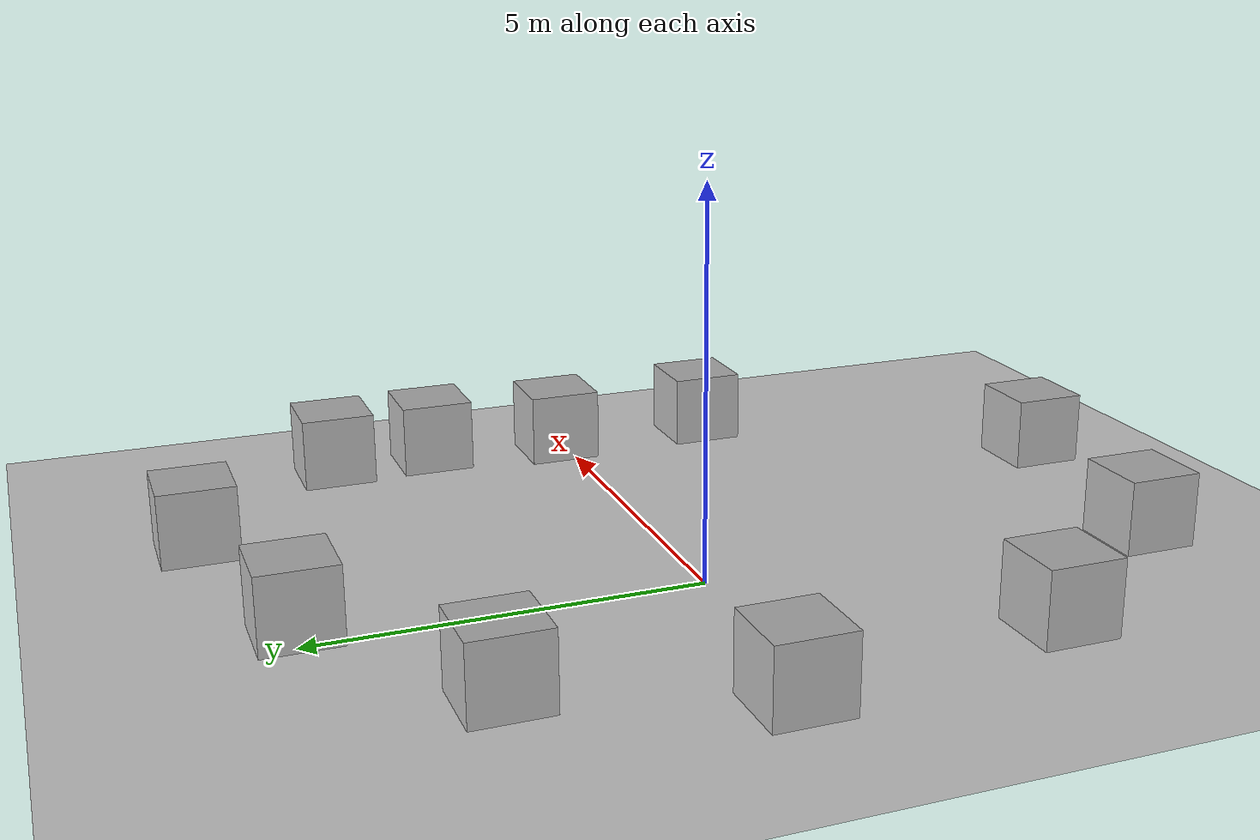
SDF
<sdf version='1.10'>
  <world name='empty'>
    <physics name='1ms' type='ignored'>
      <max_step_size>0.001</max_step_size>
      <real_time_factor>1</real_time_factor>
      <real_time_update_rate>1000</real_time_update_rate>
    </physics>
    <plugin name='gz::sim::systems::Physics' filename='gz-sim-physics-system'/>
    <plugin name='gz::sim::systems::UserCommands' filename='gz-sim-user-commands-system'/>
    <plugin name='gz::sim::systems::SceneBroadcaster' filename='gz-sim-scene-broadcaster-system'/>
    <plugin name='gz::sim::systems::Contact' filename='gz-sim-contact-system'/>
    <gravity>0 0 -9.8000000000000007</gravity>
    <magnetic_field>5.5644999999999998e-06 2.2875799999999999e-05 -4.2388400000000002e-05</magnetic_field>
    <atmosphere type='adiabatic'/>
    <scene>
      <ambient>0.400000006 0.400000006 0.400000006 1</ambient>
      <background>0.699999988 0.699999988 0.699999988 1</background>
      <shadows>true</shadows>
    </scene>
    <model name='ground_plane'>
      <static>true</static>
      <link name='link'>
        <collision name='collision'>
          <geometry>
            <plane>
              <normal>0 0 1</normal>
              <size>100 100</size>
            </plane>
          </geometry>
          <surface>
            <friction>
              <ode/>
            </friction>
            <bounce/>
            <contact/>
          </surface>
        </collision>
        <visual name='visual'>
          <geometry>
            <plane>
              <normal>0 0 1</normal>
              <size>100 100</size>
            </plane>
          </geometry>
          <material>
            <ambient>0.800000012 0.800000012 0.800000012 1</ambient>
            <diffuse>0.800000012 0.800000012 0.800000012 1</diffuse>
            <specular>0.800000012 0.800000012 0.800000012 1</specular>
          </material>
        </visual>
        <pose>0 0 0 0 0 0</pose>
        <inertial>
          <pose>0 0 0 0 0 0</pose>
          <mass>1</mass>
          <inertia>
            <ixx>1</ixx>
            <ixy>0</ixy>
            <ixz>0</ixz>
            <iyy>1</iyy>
            <iyz>0</iyz>
            <izz>1</izz>
          </inertia>
        </inertial>
        <enable_wind>false</enable_wind>
      </link>
      <pose>0 0 0 0 0 0</pose>
      <self_collide>false</self_collide>
    </model>
    <model name='box'>
      <pose>5.5580541609783385 3.4903723102053723 0.5 0 0 0</pose>
      <link name='box_link'>
        <inertial>
          <inertia>
            <ixx>0.16666</ixx>
            <ixy>0</ixy>
            <ixz>0</ixz>
            <iyy>0.16666</iyy>
            <iyz>0</iyz>
            <izz>0.16666</izz>
          </inertia>
          <mass>1</mass>
          <pose>0 0 0 0 0 0</pose>
        </inertial>
        <collision name='box_collision'>
          <geometry>
            <box>
              <size>1 1 1</size>
            </box>
          </geometry>
          <surface>
            <friction>
              <ode/>
            </friction>
            <bounce/>
            <contact/>
          </surface>
        </collision>
        <visual name='box_visual'>
          <geometry>
            <box>
              <size>1 1 1</size>
            </box>
          </geometry>
          <material>
            <ambient>0.300000012 0.300000012 0.300000012 1</ambient>
            <diffuse>0.699999988 0.699999988 0.699999988 1</diffuse>
            <specular>1 1 1 1</specular>
          </material>
        </visual>
        <pose>0 0 0 0 0 0</pose>
        <enable_wind>false</enable_wind>
      </link>
      <static>false</static>
      <self_collide>false</self_collide>
    </model>
    <model name='box_1'>
      <pose>5.6262709124113179 2.0444801151233718 0.5 0 0 0</pose>
      <link name='box_link'>
        <inertial>
          <inertia>
            <ixx>0.16666</ixx>
            <ixy>0</ixy>
            <ixz>0</ixz>
            <iyy>0.16666</iyy>
            <iyz>0</iyz>
            <izz>0.16666</izz>
          </inertia>
          <mass>1</mass>
        </inertial>
        <collision name='box_collision'>
          <geometry>
            <box>
              <size>1 1 1</size>
            </box>
          </geometry>
          <surface>
            <friction>
              <ode/>
            </friction>
            <bounce/>
            <contact/>
          </surface>
        </collision>
        <visual name='box_visual'>
          <geometry>
            <box>
              <size>1 1 1</size>
            </box>
          </geometry>
          <material>
            <ambient>0.300000012 0.300000012 0.300000012 1</ambient>
            <diffuse>0.699999988 0.699999988 0.699999988 1</diffuse>
            <specular>1 1 1 1</specular>
          </material>
        </visual>
      </link>
      <static>false</static>
      <self_collide>false</self_collide>
    </model>
    <model name='box_2'>
      <pose>5.4219704952978685 0.1766304189739516 0.5 0 0 0</pose>
      <link name='box_link'>
        <inertial>
          <inertia>
            <ixx>0.16666</ixx>
            <ixy>0</ixy>
            <ixz>0</ixz>
            <iyy>0.16666</iyy>
            <iyz>0</iyz>
            <izz>0.16666</izz>
          </inertia>
          <mass>1</mass>
        </inertial>
        <collision name='box_collision'>
          <geometry>
            <box>
              <size>1 1 1</size>
            </box>
          </geometry>
          <surface>
            <friction>
              <ode/>
            </friction>
            <bounce/>
            <contact/>
          </surface>
        </collision>
        <visual name='box_visual'>
          <geometry>
            <box>
              <size>1 1 1</size>
            </box>
          </geometry>
          <material>
            <ambient>0.300000012 0.300000012 0.300000012 1</ambient>
            <diffuse>0.699999988 0.699999988 0.699999988 1</diffuse>
            <specular>1 1 1 1</specular>
          </material>
        </visual>
      </link>
      <static>false</static>
      <self_collide>false</self_collide>
    </model>
    <model name='box_3'>
      <pose>5.4896749650643741 -2.1202062668313597 0.5 0 0 0</pose>
      <link name='box_link'>
        <inertial>
          <inertia>
            <ixx>0.16666</ixx>
            <ixy>0</ixy>
            <ixz>0</ixz>
            <iyy>0.16666</iyy>
            <iyz>0</iyz>
            <izz>0.16666</izz>
          </inertia>
          <mass>1</mass>
        </inertial>
        <collision name='box_collision'>
          <geometry>
            <box>
              <size>1 1 1</size>
            </box>
          </geometry>
          <surface>
            <friction>
              <ode/>
            </friction>
            <bounce/>
            <contact/>
          </surface>
        </collision>
        <visual name='box_visual'>
          <geometry>
            <box>
              <size>1 1 1</size>
            </box>
          </geometry>
          <material>
            <ambient>0.300000012 0.300000012 0.300000012 1</ambient>
            <diffuse>0.699999988 0.699999988 0.699999988 1</diffuse>
            <specular>1 1 1 1</specular>
          </material>
        </visual>
      </link>
      <static>false</static>
      <self_collide>false</self_collide>
    </model>
    <model name='box_4'>
      <pose>3.3475781345485194 5.6933106020174087 0.5 0 0 0</pose>
      <link name='box_link'>
        <inertial>
          <inertia>
            <ixx>0.16666</ixx>
            <ixy>0</ixy>
            <ixz>0</ixz>
            <iyy>0.16666</iyy>
            <iyz>0</iyz>
            <izz>0.16666</izz>
          </inertia>
          <mass>1</mass>
        </inertial>
        <collision name='box_collision'>
          <geometry>
            <box>
              <size>1 1 1</size>
            </box>
          </geometry>
          <surface>
            <friction>
              <ode/>
            </friction>
            <bounce/>
            <contact/>
          </surface>
        </collision>
        <visual name='box_visual'>
          <geometry>
            <box>
              <size>1 1 1</size>
            </box>
          </geometry>
          <material>
            <ambient>0.300000012 0.300000012 0.300000012 1</ambient>
            <diffuse>0.699999988 0.699999988 0.699999988 1</diffuse>
            <specular>1 1 1 1</specular>
          </material>
        </visual>
      </link>
      <static>false</static>
      <self_collide>false</self_collide>
    </model>
    <model name='box_5'>
      <pose>0.3786682776667134 4.9496054196244375 0.5 0 0 0</pose>
      <link name='box_link'>
        <inertial>
          <inertia>
            <ixx>0.16666</ixx>
            <ixy>0</ixy>
            <ixz>0</ixz>
            <iyy>0.16666</iyy>
            <iyz>0</iyz>
            <izz>0.16666</izz>
          </inertia>
          <mass>1</mass>
        </inertial>
        <collision name='box_collision'>
          <geometry>
            <box>
              <size>1 1 1</size>
            </box>
          </geometry>
          <surface>
            <friction>
              <ode/>
            </friction>
            <bounce/>
            <contact/>
          </surface>
        </collision>
        <visual name='box_visual'>
          <geometry>
            <box>
              <size>1 1 1</size>
            </box>
          </geometry>
          <material>
            <ambient>0.300000012 0.300000012 0.300000012 1</ambient>
            <diffuse>0.699999988 0.699999988 0.699999988 1</diffuse>
            <specular>1 1 1 1</specular>
          </material>
        </visual>
      </link>
      <static>false</static>
      <self_collide>false</self_collide>
    </model>
    <model name='box_6'>
      <pose>-2.0754776924136595 3.2155717218941415 0.5 0 0 0</pose>
      <link name='box_link'>
        <inertial>
          <inertia>
            <ixx>0.16666</ixx>
            <ixy>0</ixy>
            <ixz>0</ixz>
            <iyy>0.16666</iyy>
            <iyz>0</iyz>
            <izz>0.16666</izz>
          </inertia>
          <mass>1</mass>
        </inertial>
        <collision name='box_collision'>
          <geometry>
            <box>
              <size>1 1 1</size>
            </box>
          </geometry>
          <surface>
            <friction>
              <ode/>
            </friction>
            <bounce/>
            <contact/>
          </surface>
        </collision>
        <visual name='box_visual'>
          <geometry>
            <box>
              <size>1 1 1</size>
            </box>
          </geometry>
          <material>
            <ambient>0.300000012 0.300000012 0.300000012 1</ambient>
            <diffuse>0.699999988 0.699999988 0.699999988 1</diffuse>
            <specular>1 1 1 1</specular>
          </material>
        </visual>
      </link>
      <static>false</static>
      <self_collide>false</self_collide>
    </model>
    <model name='box_7'>
      <pose>-3.2848161548440715 0.33651616390972827 0.5 0 0 0</pose>
      <link name='box_link'>
        <inertial>
          <inertia>
            <ixx>0.16666</ixx>
            <ixy>0</ixy>
            <ixz>0</ixz>
            <iyy>0.16666</iyy>
            <iyz>0</iyz>
            <izz>0.16666</izz>
          </inertia>
          <mass>1</mass>
        </inertial>
        <collision name='box_collision'>
          <geometry>
            <box>
              <size>1 1 1</size>
            </box>
          </geometry>
          <surface>
            <friction>
              <ode/>
            </friction>
            <bounce/>
            <contact/>
          </surface>
        </collision>
        <visual name='box_visual'>
          <geometry>
            <box>
              <size>1 1 1</size>
            </box>
          </geometry>
          <material>
            <ambient>0.300000012 0.300000012 0.300000012 1</ambient>
            <diffuse>0.699999988 0.699999988 0.699999988 1</diffuse>
            <specular>1 1 1 1</specular>
          </material>
        </visual>
      </link>
      <static>false</static>
      <self_collide>false</self_collide>
    </model>
    <model name='box_8'>
      <pose>-2.6902130880893727 -3.32819313010791 0.5 0 0 0</pose>
      <link name='box_link'>
        <inertial>
          <inertia>
            <ixx>0.16666</ixx>
            <ixy>0</ixy>
            <ixz>0</ixz>
            <iyy>0.16666</iyy>
            <iyz>0</iyz>
            <izz>0.16666</izz>
          </inertia>
          <mass>1</mass>
        </inertial>
        <collision name='box_collision'>
          <geometry>
            <box>
              <size>1 1 1</size>
            </box>
          </geometry>
          <surface>
            <friction>
              <ode/>
            </friction>
            <bounce/>
            <contact/>
          </surface>
        </collision>
        <visual name='box_visual'>
          <geometry>
            <box>
              <size>1 1 1</size>
            </box>
          </geometry>
          <material>
            <ambient>0.300000012 0.300000012 0.300000012 1</ambient>
            <diffuse>0.699999988 0.699999988 0.699999988 1</diffuse>
            <specular>1 1 1 1</specular>
          </material>
        </visual>
      </link>
      <static>false</static>
      <self_collide>false</self_collide>
    </model>
    <model name='box_9'>
      <pose>2.6738644060682137 -6.3583020863660851 0.5 0 0 0</pose>
      <link name='box_link'>
        <inertial>
          <inertia>
            <ixx>0.16666</ixx>
            <ixy>0</ixy>
            <ixz>0</ixz>
            <iyy>0.16666</iyy>
            <iyz>0</iyz>
            <izz>0.16666</izz>
          </inertia>
          <mass>1</mass>
        </inertial>
        <collision name='box_collision'>
          <geometry>
            <box>
              <size>1 1 1</size>
            </box>
          </geometry>
          <surface>
            <friction>
              <ode/>
            </friction>
            <bounce/>
            <contact/>
          </surface>
        </collision>
        <visual name='box_visual'>
          <geometry>
            <box>
              <size>1 1 1</size>
            </box>
          </geometry>
          <material>
            <ambient>0.300000012 0.300000012 0.300000012 1</ambient>
            <diffuse>0.699999988 0.699999988 0.699999988 1</diffuse>
            <specular>1 1 1 1</specular>
          </material>
        </visual>
      </link>
      <static>false</static>
      <self_collide>false</self_collide>
    </model>
    <model name='box_10'>
      <pose>-0.70715380787627957 -5.8589895422105176 0.5 0 0 0</pose>
      <link name='box_link'>
        <inertial>
          <inertia>
            <ixx>0.16666</ixx>
            <ixy>0</ixy>
            <ixz>0</ixz>
            <iyy>0.16666</iyy>
            <iyz>0</iyz>
            <izz>0.16666</izz>
          </inertia>
          <mass>1</mass>
        </inertial>
        <collision name='box_collision'>
          <geometry>
            <box>
              <size>1 1 1</size>
            </box>
          </geometry>
          <surface>
            <friction>
              <ode/>
            </friction>
            <bounce/>
            <contact/>
          </surface>
        </collision>
        <visual name='box_visual'>
          <geometry>
            <box>
              <size>1 1 1</size>
            </box>
          </geometry>
          <material>
            <ambient>0.300000012 0.300000012 0.300000012 1</ambient>
            <diffuse>0.699999988 0.699999988 0.699999988 1</diffuse>
            <specular>1 1 1 1</specular>
          </material>
        </visual>
      </link>
      <static>false</static>
      <self_collide>false</self_collide>
    </model>
    <light name='sun' type='directional'>
      <pose>0 0 10 0 0 0</pose>
      <cast_shadows>true</cast_shadows>
      <intensity>1</intensity>
      <direction>-0.5 0.10000000000000001 -0.90000000000000002</direction>
      <diffuse>0.800000012 0.800000012 0.800000012 1</diffuse>
      <specular>0.200000003 0.200000003 0.200000003 1</specular>
      <attenuation>
        <range>1000</range>
        <linear>0.01</linear>
        <constant>0.90000000000000002</constant>
        <quadratic>0.001</quadratic>
      </attenuation>
      <spot>
        <inner_angle>0</inner_angle>
        <outer_angle>0</outer_angle>
        <falloff>0</falloff>
      </spot>
    </light>
  </world>
</sdf>
